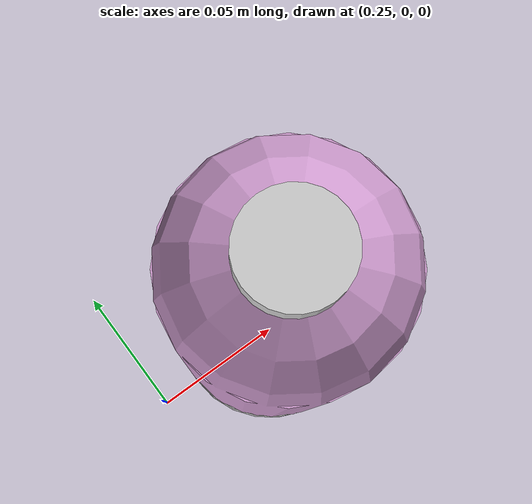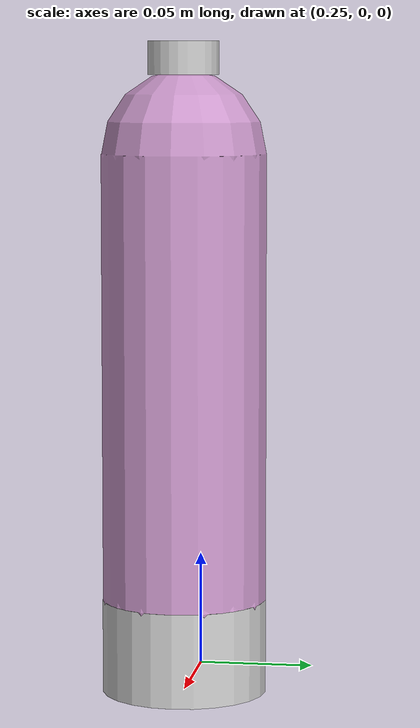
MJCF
<?xml version="1.0" encoding="utf-8"?>
<mujoco model="bottle">
  <visual>
      <quality shadowsize="4048"/>
  </visual>

  <worldbody>
    <body>
      <body name="object" pos="0.3 0 0">
        <geom type="capsule"  size="0.0351 .095" rgba="0.8 0.6 0.8 1" pos="0 0 .135" group="0" mass="0.05"/>
        <geom type="cylinder" size="0.0351 .020" rgba="0.8 0.8 0.8 1" pos="0 0 .020" group="0" mass="0.05"/>
        <geom type="cylinder" size="0.0150 .007" rgba="0.8 0.8 0.8 1" pos="0 0 .270" group="0" mass="0.05"/>
        <site name="bottle_handle" pos="0 0 .13" group="2"/>
      </body>
    </body>
  </worldbody>
</mujoco>
